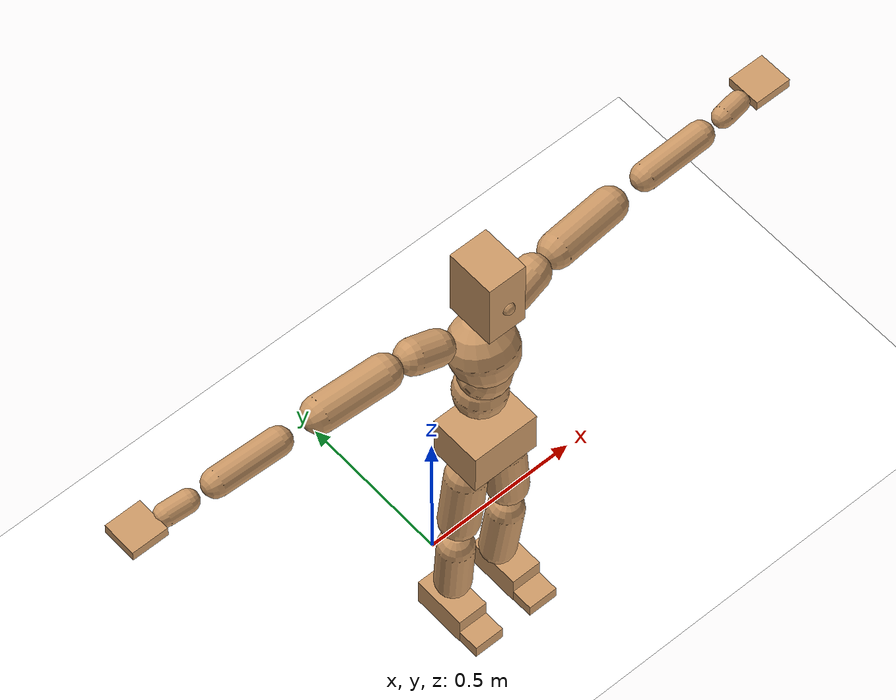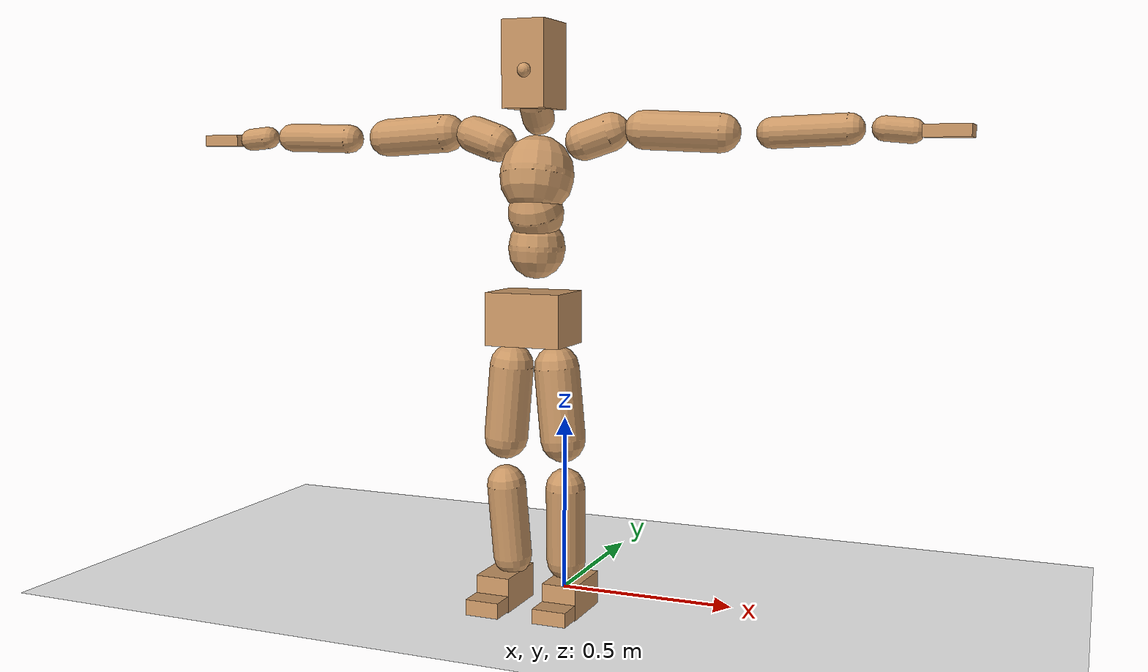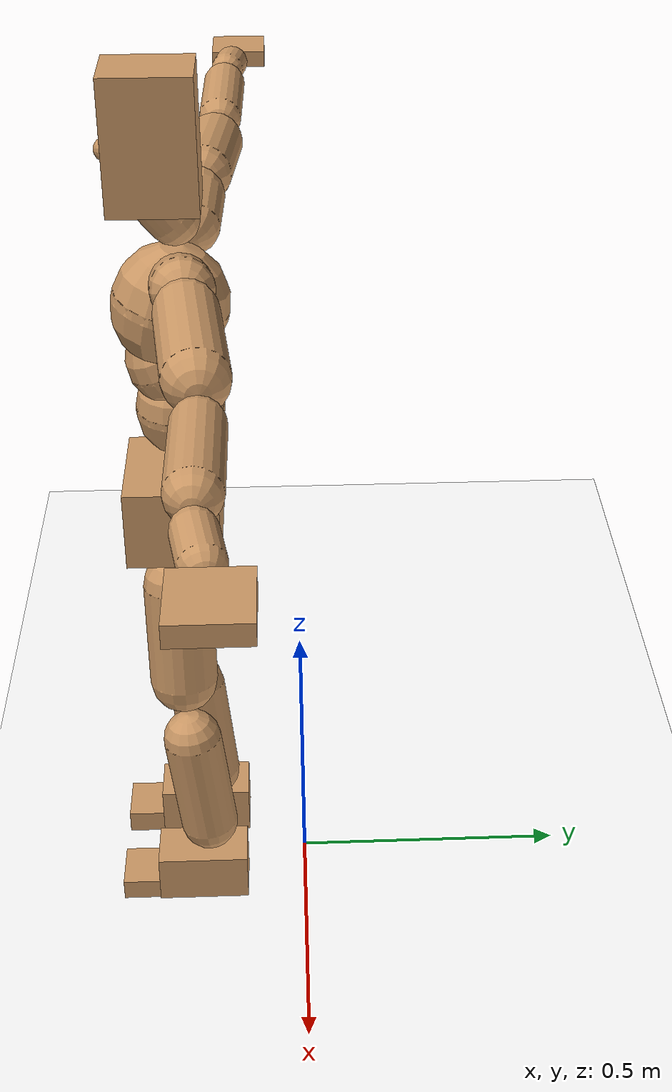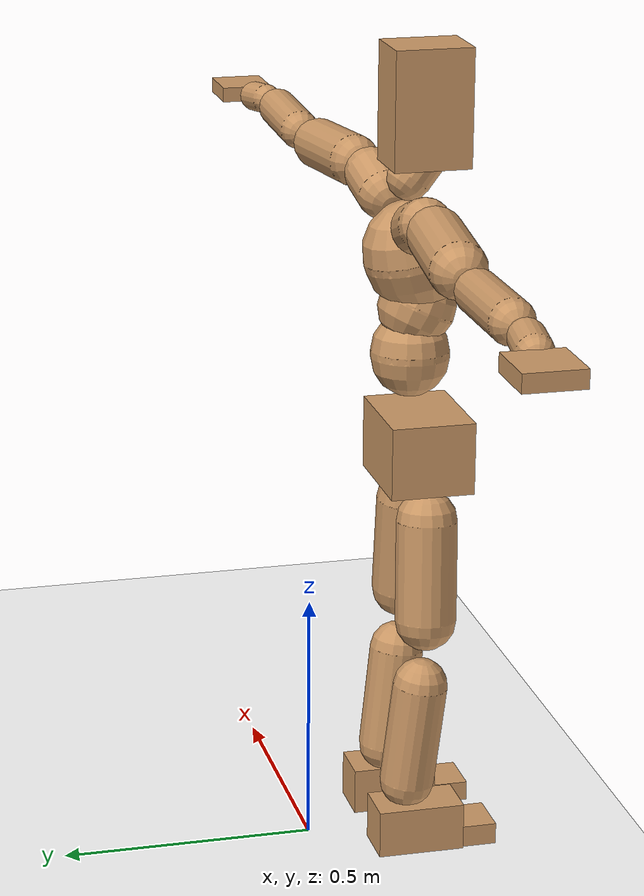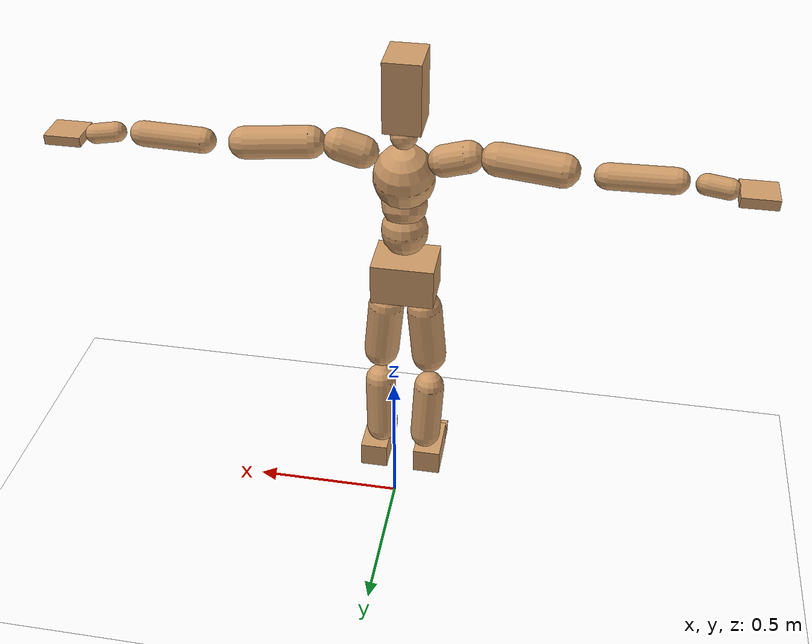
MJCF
<mujoco model="humanoid">
  <option integrator="implicitfast" />

  <visual>
    <global offwidth="1280" offheight="960" />
    <headlight active="1" ambient="0.34 0.34 0.34" diffuse="0.5 0.5 0.5" />
  </visual>

  <default>
    <joint damping="2" stiffness="2" armature="0.01" limited="true" solimplimit="0 .99 .01" />
    <geom condim="1" friction="0.7 0.005 0.0001" solimp=".99 .99 .003" solref="0.015 1" margin="0.001" rgba="0.8 0.6 .4 1" />
    <default class="smplcontact">
      <geom condim="3" friction="1. 0.005 0.0001" solref="0.015 1" solimp="0.98 0.98 0.001" priority="1" />
    </default>
    <default class="stiff_medium">
      <joint stiffness="10" />
    </default>
    <default class="stiff_medium_higher">
      <joint stiffness="50" />
    </default>
    <default class="stiff_high">
      <joint stiffness="100" />
    </default>
  </default>

  <asset>
    <texture type="skybox" builtin="gradient" rgb1="0.99 0.99 0.99" rgb2="0.608 0.828 0.892" width="100" />
    <texture builtin="flat" height="1278" mark="cross" markrgb="1 1 1" name="texgeom" random="0.01" rgb1="0.8 0.6 0.4" rgb2="0.8 0.6 0.4" type="cube" width="127" />
    <texture name="texplane" type="2d" builtin="checker" markrgb="1 1 1" rgb1="0.756 0.772 0.76" rgb2="0.6 0.6 0.6" width="100" height="100" />
    <material name="MatPlane" reflectance="0.5" texture="texplane" texrepeat="1 1" texuniform="true" />
    <material name="geom" texture="texgeom" texuniform="true" />
  </asset>

  <worldbody>
    <light name="tracking_light" pos="0 0 7" dir="0 0 -1" directional="true" cutoff="100" exponent="1" diffuse="1 1 1" specular="0.1 0.1 0.1" mode="trackcom" />
    <camera name="back" pos="0 3 2.4" xyaxes="-1 0 0 0 -1 2" mode="trackcom" />
    <camera name="side" pos="-3 0 2.4" xyaxes="0 -1 0 1 0 2" mode="trackcom" />
    <camera name="front_side" pos="-2.8 -2.8 0.8" xyaxes="0.5 -0.5 0 0.1 0.1 1" mode="trackcom" />
    <geom condim="3" name="floor" pos="0 0 0" rgba="1 1 1 1" size="100 100 .2" type="plane" material="MatPlane" />
    <body name="Pelvis" pos="-0.0018 -0.2233 0.825587" euler="90 0 0">
      <site name="Pelvis" size="0.01" />
      <freejoint name="Pelvis" />
      <geom type="box" pos="-0.0000 -0.0121 -0.0055" size="0.1069 0.0722 0.083" quat="1.0000 0.0000 0.0000 0.0000" density="3165.830099" name="Pelvis" />
      <body name="L_Hip" pos="0.0608125 -0.079975 -0.00595">
        <joint name="L_Hip_x" type="hinge" pos="0 0 0" axis="1 0 0" stiffness="8.018564387755102" range="-160.0 22.92" class="stiff_medium" damping="11.360360262787497" armature="0.007153277434128083"/>
        <joint name="L_Hip_y" type="hinge" pos="0 0 0" axis="0 1 0" stiffness="8.040343265306122" range="-70.0 70.0" class="stiff_medium" damping="8.207855033549667" armature="0.008378856726485999"/>
        <joint name="L_Hip_z" type="hinge" pos="0 0 0" axis="0 0 1" stiffness="8.038478673469386" range="-28.65 90.0" class="stiff_medium" damping="7.581991637464593" armature="0.0071514274685227155"/>
        <geom type="capsule" density="2040.816327" fromto="0.0060375 -0.065625 -0.0007875 0.023975 -0.262675 -0.00315" size="0.0615" name="L_Hip" />
        <body name="L_Knee" pos="0.0300125 -0.3283 -0.0039375">
          <joint name="L_Knee_x" type="hinge" pos="0 0 0" axis="1 0 0" range="-5.16 171.89" damping="6.187481263356624" armature="0.007345812746914755" stiffness="1.6286882448979592"/>
          <joint name="L_Knee_y" type="hinge" pos="0 0 0" axis="0 1 0" range="-4.58 6.88" damping="6.664577128501178" armature="0.008600571968275742" stiffness="1.6138675306122447"/>
          <joint name="L_Knee_z" type="hinge" pos="0 0 0" axis="0 0 1" range="-6.88 4.58" damping="6.195974658750658" armature="0.007336542514311976" stiffness="1.635226244897959"/>
          <geom type="capsule" density="1234.567901" fromto="-0.0023625 -0.06965 -0.0076125 -0.0095375 -0.2786 -0.030625" size="0.0541" name="L_Knee" />
          <body name="L_Ankle" pos="-0.0119 -0.34825 -0.0382375">
            <joint name="L_Ankle_x" type="hinge" pos="0 0 0" axis="1 0 0" range="-45.84 45.84" class="stiff_medium" damping="5.1618081398931706" armature="0.008458478225834629" stiffness="8.750018673469388"/>
            <joint name="L_Ankle_y" type="hinge" pos="0 0 0" axis="0 1 0" range="-74.48 22.92" class="stiff_medium" damping="2.5896377165389355" armature="0.008515827848834853" stiffness="8.750011836734695"/>
            <joint name="L_Ankle_z" type="hinge" pos="0 0 0" axis="0 0 1" range="-4.58 4.58" class="stiff_medium" damping="5.292201995620762" armature="0.00889123871823885" stiffness="8.75"/>
            <geom type="box" pos="0.0203875 -0.0209125 0.021175" size="0.0483 0.0464 0.085" quat="1.0000 0.0000 0.0000 0.0000" density="449.071558" name="L_Ankle" class="smplcontact" />
            <body name="L_Toe" pos="0.0231 -0.048825 0.104388">
              <joint name="L_Toe_x" type="hinge" pos="0 0 0" axis="1 0 0" range="-91.67 22.92" armature="0.009108934582591413" damping="1.7855327227208675" stiffness="1.75"/>
              <joint name="L_Toe_y" type="hinge" pos="0 0 0" axis="0 1 0" range="-4.58 4.58" armature="0.009372172477213336" damping="1.811148908020726" stiffness="1.75"/>
              <joint name="L_Toe_z" type="hinge" pos="0 0 0" axis="0 0 1" range="-4.58 4.58" armature="0.009904425331425014" damping="1.861867037679854" stiffness="1.75"/>
              <geom type="box" pos="-0.002625 0.0048125 0.0217" size="0.0478 0.02 0.0496" quat="1.0000 0.0000 0.0000 0.0000" density="423.206892" name="L_Toe" class="smplcontact" />
            </body>
          </body>
        </body>
      </body>
      <body name="R_Hip" pos="-0.0592375 -0.0791875 -0.0037625">
        <joint name="R_Hip_x" type="hinge" pos="0 0 0" axis="1 0 0" stiffness="8.018564387755102" range="-160.0 22.92" class="stiff_medium" damping="11.360360262787497" armature="0.007153277434128083"/>
        <joint name="R_Hip_y" type="hinge" pos="0 0 0" axis="0 1 0" stiffness="8.040343265306122" range="-70.0 70.0" class="stiff_medium" damping="8.207855033549667" armature="0.008378856726485999"/>
        <joint name="R_Hip_z" type="hinge" pos="0 0 0" axis="0 0 1" stiffness="8.038478673469386" range="-90.0 28.65" class="stiff_medium" damping="7.581991637464593" armature="0.0071514274685227155"/>
        <geom type="capsule" density="2040.816327" fromto="-0.0067375 -0.0669375 -0.001575 -0.026775 -0.267838 -0.0062125" size="0.0606" name="R_Hip" />
        <body name="R_Knee" pos="-0.0335125 -0.334775 -0.0077875">
          <joint name="R_Knee_x" type="hinge" pos="0 0 0" axis="1 0 0" range="-5.16 171.89" damping="6.187481263356624" armature="0.007345812746914755" stiffness="1.6286882448979592"/>
          <joint name="R_Knee_y" type="hinge" pos="0 0 0" axis="0 1 0" range="-6.88 4.58" damping="6.664577128501178" armature="0.008600571968275742" stiffness="1.6138675306122447"/>
          <joint name="R_Knee_z" type="hinge" pos="0 0 0" axis="0 0 1" range="-4.58 6.88" damping="6.195974658750658" armature="0.007336542514311976" stiffness="1.635226244897959"/>
          <geom type="capsule" density="1234.567901" fromto="0.0028 -0.0697375 -0.0074375 0.011025 -0.278863 -0.029575" size="0.0541" name="R_Knee" />
          <body name="R_Ankle" pos="0.013825 -0.3486 -0.0370125">
            <joint name="R_Ankle_x" type="hinge" pos="0 0 0" axis="1 0 0" range="-45.84 45.84" class="stiff_medium" damping="5.1618081398931706" armature="0.008458478225834629" stiffness="8.750018673469388"/>
            <joint name="R_Ankle_y" type="hinge" pos="0 0 0" axis="0 1 0" range="-22.92 74.48" class="stiff_medium" damping="2.5896377165389355" armature="0.008515827848834853" stiffness="8.750011836734695"/>
            <joint name="R_Ankle_z" type="hinge" pos="0 0 0" axis="0 0 1" range="-4.58 4.58" class="stiff_medium" damping="5.292201995620762" armature="0.00889123871823885" stiffness="8.75"/>
            <geom type="box" pos="-0.01855 -0.015225 0.0224" size="0.0483 0.0478 0.0865" quat="1.0000 0.0000 0.0000 0.0000" density="434.700981" name="R_Ankle" class="smplcontact" />
            <body name="R_Toe" pos="-0.022225 -0.0420875 0.107888">
              <joint name="R_Toe_x" type="hinge" pos="0 0 0" axis="1 0 0" range="-91.67 22.92" armature="0.009108934582591413" damping="1.7855327227208675" stiffness="1.75"/>
              <joint name="R_Toe_y" type="hinge" pos="0 0 0" axis="0 1 0" range="-4.58 4.58" armature="0.009372172477213336" damping="1.811148908020726" stiffness="1.75"/>
              <joint name="R_Toe_z" type="hinge" pos="0 0 0" axis="0 0 1" range="-4.58 4.58" armature="0.009904425331425014" damping="1.861867037679854" stiffness="1.75"/>
              <geom type="box" pos="0.003675 0.0039375 0.0198625" size="0.0479 0.0216 0.0493" quat="1.0000 0.0000 0.0000 0.0000" density="407.384095" name="R_Toe" class="smplcontact" />
            </body>
          </body>
        </body>
      </body>
      <body name="Torso" pos="-0.0025 0.109 -0.0267">
        <joint name="Torso_x" type="hinge" pos="0 0 0" axis="1 0 0" range="-25.78 57.3" class="stiff_medium" damping="16.94478917737132" armature="0.01157607956441882" stiffness="11.023723673469387"/>
        <joint name="Torso_y" type="hinge" pos="0 0 0" axis="0 1 0" range="-57.3 57.3" class="stiff_high" damping="29.11508756713538" armature="0.01937626790595332" stiffness="109.37198124999998"/>
        <joint name="Torso_z" type="hinge" pos="0 0 0" axis="0 0 1" range="-34.38 34.38" class="stiff_high" damping="24.64077151532871" armature="0.014228244849331766" stiffness="106.68350652173912"/>
        <geom type="capsule" density="2040.816327" fromto="0.0025 0.0608 0.0005 0.003 0.0743 0.0006" size="0.0769" name="Torso" />
        <body name="Spine" pos="0.0055 0.1352 0.0011">
          <joint name="Spine_x" type="hinge" pos="0 0 0" axis="1 0 0" stiffness="11.23382224489796" range="-25.78 57.3" class="stiff_medium" damping="17.41106230963078" armature="0.011993349058515351"/>
          <joint name="Spine_y" type="hinge" pos="0 0 0" axis="0 1 0" stiffness="11.67224088888889" range="-57.3 57.3" class="stiff_high" damping="12.051053820080998" armature="0.01944087626855341"/>
          <joint name="Spine_z" type="hinge" pos="0 0 0" axis="0 0 1" stiffness="22.9563125" range="-34.38 34.38" class="stiff_high" damping="16.317554444807215" armature="0.01610925723100537"/>
          <geom type="capsule" density="2040.816327" fromto="0.0007 0.0238 0.0114 0.0008 0.0291 0.014" size="0.0755" name="Spine" />
          <body name="Chest" pos="0.0015 0.0529 0.0254">
            <joint name="Chest_x" type="hinge" pos="0 0 0" axis="1 0 0" stiffness="11.776115531914895" range="-25.78 57.3" class="stiff_medium" damping="18.021102303759765" armature="0.012256829035287789"/>
            <joint name="Chest_y" type="hinge" pos="0 0 0" axis="0 1 0" stiffness="13.448267333333334" range="-57.3 57.3" class="stiff_high" damping="12.937740431789006" armature="0.01944780358729065"/>
            <joint name="Chest_z" type="hinge" pos="0 0 0" axis="0 0 1" stiffness="23.267014782608697" range="-34.38 34.38" class="stiff_high" damping="16.847528832624963" armature="0.016943348915127984"/>
            <geom type="capsule" density="2040.816327" fromto="-0.0009 0.0682 -0.0173 -0.001 0.0833 -0.0212" size="0.1002" name="Chest" />
            <body name="Neck" pos="-0.0028 0.2139 -0.0429">
              <joint name="Neck_x" type="hinge" pos="0 0 0" axis="1 0 0" range="-28.65 57.3" class="stiff_medium_higher" damping="10.000000000000004" armature="0.01000000000000001" stiffness="50.0"/>
              <joint name="Neck_y" type="hinge" pos="0 0 0" axis="0 1 0" range="-40.11 40.11" class="stiff_medium_higher" damping="10.0" armature="0.01" stiffness="50.0"/>
              <joint name="Neck_z" type="hinge" pos="0 0 0" axis="0 0 1" range="-40.11 40.11" class="stiff_medium_higher" damping="10.0" armature="0.010000000000000002" stiffness="50.0"/>
              <geom type="capsule" density="1000" fromto="0.001 0.013 0.0103 0.0041 0.052 0.0411" size="0.0436" name="Neck" />
              <body name="Head" pos="0.0052 0.065 0.0513">
                <joint name="Head_x" type="hinge" pos="0 0 0" axis="1 0 0" range="-28.65 57.3" class="stiff_medium_higher" damping="2.000000000000003" armature="0.010000000000000031" stiffness="50.0"/>
                <joint name="Head_y" type="hinge" pos="0 0 0" axis="0 1 0" range="-40.11 40.11" class="stiff_medium_higher" damping="1.9999999999999998" armature="0.009999999999999998" stiffness="50.0"/>
                <joint name="Head_z" type="hinge" pos="0 0 0" axis="0 0 1" range="-40.11 40.11" class="stiff_medium_higher" damping="2.0" armature="0.01" stiffness="50.0"/>
                <geom type="box" pos="-0.0042 0.0876 -0.0116" size="0.0606 0.1154 0.076" quat="1.0000 0.0000 0.0000 0.0000" density="1018.069894" name="Head" />
                <geom type="capsule" name="nose" size="0.02 0.01" pos="0 0.07 0.05" quat="1 0 0 0" mass="0" contype="0" conaffinity="0" />
              </body>
            </body>
            <body name="L_Thorax" pos="0.10244 0.15821 -0.04433">
              <joint name="L_Thorax_x" type="hinge" pos="0 0 0" axis="1 0 0" range="-10.89 4.58" class="stiff_medium_higher" damping="31.58973579795785" armature="0.016223873504270302" stiffness="76.88603214285715"/>
              <joint name="L_Thorax_y" type="hinge" pos="0 0 0" axis="0 1 0" range="-28.65 17.19" class="stiff_medium_higher" damping="34.899895599714064" armature="0.01967496307175569" stiffness="77.38278265306123"/>
              <joint name="L_Thorax_z" type="hinge" pos="0 0 0" axis="0 0 1" range="-31.51 40.11" class="stiff_medium_higher" damping="34.901462278801546" armature="0.019678125977203684" stiffness="77.37729132653061"/>
              <geom type="capsule" density="1000" fromto="0.02366 0.00793 -0.00234 0.09464 0.03172 -0.00923" size="0.0521" name="L_Thorax" />
              <body name="L_Shoulder" pos="0.1183 0.03965 -0.01157">
                <joint name="L_Shoulder_x" type="hinge" pos="0 0 0" axis="1 0 0" range="-97.4 97.4" class="stiff_medium" damping="9.029989056679007" armature="0.014800063709014051" stiffness="15.304120000000001"/>
                <joint name="L_Shoulder_y" type="hinge" pos="0 0 0" axis="0 1 0" range="-108.86 80.21" class="stiff_medium" damping="10.416659800941959" armature="0.019521721968520908" stiffness="15.439610408163267"/>
                <joint name="L_Shoulder_z" type="hinge" pos="0 0 0" axis="0 0 1" range="-97.4 85.94" class="stiff_medium" damping="10.414978319288075" armature="0.019525527681653103" stiffness="15.431617857142857"/>
                <geom type="capsule" density="1000" fromto="0.06747 -0.00338 -0.00715 0.27001 -0.01326 -0.0286" size="0.0517" name="L_Shoulder" />
                <body name="L_Elbow" pos="0.33748 -0.01664 -0.03575">
                  <joint name="L_Elbow_x" type="hinge" pos="0 0 0" axis="1 0 0" range="-17.19 4.58" damping="6.893935965131418" armature="0.012655354053031337" stiffness="3.0043475918367353"/>
                  <joint name="L_Elbow_y" type="hinge" pos="0 0 0" axis="0 1 0" range="-180.0 17.19" damping="8.400044856786582" armature="0.01878090142426553" stiffness="3.005638632653061"/>
                  <joint name="L_Elbow_z" type="hinge" pos="0 0 0" axis="0 0 1" range="-100.84 4.58" damping="8.401427491655662" armature="0.018800821954664825" stiffness="3.003442469387755"/>
                  <geom type="capsule" density="1000" fromto="0.06474 0.00234 -0.00026 0.25922 0.00936 -0.00117" size="0.0405" name="L_Elbow" />
                  <body name="L_Wrist" pos="0.32396 0.0117 -0.00156">
                    <joint name="L_Wrist_x" type="hinge" pos="0 0 0" axis="1 0 0" range="-180.0 22.92" armature="0.01229032794172809" damping="2.595783394027905" stiffness="2.7412171020408165"/>
                    <joint name="L_Wrist_y" type="hinge" pos="0 0 0" axis="0 1 0" range="-17.19 17.19" armature="0.016530608092611563" damping="3.0218064127612343" stiffness="2.7619413469387752"/>
                    <joint name="L_Wrist_z" type="hinge" pos="0 0 0" axis="0 0 1" range="-22.92 22.92" armature="0.01676100149056628" damping="3.0381836187288065" stiffness="2.7535823877551024"/>
                    <geom type="capsule" density="1000" fromto="0.02184 -0.00208 -0.0039 0.08736 -0.00845 -0.0156" size="0.0318" name="L_Wrist" class="smplcontact" />
                    <body name="L_Hand" pos="0.1092 -0.01066 -0.01937">
                      <joint name="L_Hand_x" type="hinge" pos="0 0 0" axis="1 0 0" range="-17.19 17.19" armature="0.01030060650759192" damping="2.3143714878877586" stiffness="2.5999999999999996"/>
                      <joint name="L_Hand_y" type="hinge" pos="0 0 0" axis="0 1 0" range="-51.57 51.57" armature="0.013635420978089298" damping="2.662784052191697" stiffness="2.5999999999999996"/>
                      <joint name="L_Hand_z" type="hinge" pos="0 0 0" axis="0 0 1" range="-91.67 91.67" armature="0.014524361339041782" damping="2.748211763365721" stiffness="2.5999999999999996"/>
                      <geom type="box" pos="0.06409 0.0013 -0.00754" size="0.0585 0.0158 0.0538" quat="1.0000 0.0000 0.0000 0.0000" density="400.552564" name="L_Hand" class="smplcontact" />
                    </body>
                  </body>
                </body>
              </body>
            </body>
            <body name="R_Thorax" pos="-0.10634 0.15444 -0.05018">
              <joint name="R_Thorax_x" type="hinge" pos="0 0 0" axis="1 0 0" range="-10.89 4.58" class="stiff_medium_higher" damping="31.58973579795785" armature="0.016223873504270302" stiffness="76.88603214285715"/>
              <joint name="R_Thorax_y" type="hinge" pos="0 0 0" axis="0 1 0" range="-17.19 28.65" class="stiff_medium_higher" damping="34.899895599714064" armature="0.01967496307175569" stiffness="77.38278265306123"/>
              <joint name="R_Thorax_z" type="hinge" pos="0 0 0" axis="0 0 1" range="-40.11 31.51" class="stiff_medium_higher" damping="34.901462278801546" armature="0.019678125977203684" stiffness="77.37729132653061"/>
              <geom type="capsule" density="1000" fromto="-0.02496 0.00845 -0.00234 -0.09984 0.0338 -0.00949" size="0.0511" name="R_Thorax" />
              <body name="R_Shoulder" pos="-0.1248 0.04238 -0.01183">
                <joint name="R_Shoulder_x" type="hinge" pos="0 0 0" axis="1 0 0" range="-97.4 97.4" class="stiff_medium" damping="9.029989056679007" armature="0.014800063709014051" stiffness="15.304120000000001"/>
                <joint name="R_Shoulder_y" type="hinge" pos="0 0 0" axis="0 1 0" range="-80.21 108.86" class="stiff_medium" damping="10.416659800941959" armature="0.019521721968520908" stiffness="15.439610408163267"/>
                <joint name="R_Shoulder_z" type="hinge" pos="0 0 0" axis="0 0 1" range="-85.94 97.4" class="stiff_medium" damping="10.414978319288075" armature="0.019525527681653103" stiffness="15.431617857142857"/>
                <geom type="capsule" density="1000" fromto="-0.06591 -0.00351 -0.00559 -0.2639 -0.01391 -0.02223" size="0.0531" name="R_Shoulder" />
                <body name="R_Elbow" pos="-0.32981 -0.01729 -0.02782">
                  <joint name="R_Elbow_x" type="hinge" pos="0 0 0" axis="1 0 0" range="-17.19 4.58" damping="6.893935965131418" armature="0.012655354053031337" stiffness="3.0043475918367353"/>
                  <joint name="R_Elbow_y" type="hinge" pos="0 0 0" axis="0 1 0" range="-17.19 180.0" damping="8.400044856786582" armature="0.01878090142426553" stiffness="3.005638632653061"/>
                  <joint name="R_Elbow_z" type="hinge" pos="0 0 0" axis="0 0 1" range="-4.58 100.84" damping="8.401427491655662" armature="0.018800821954664825" stiffness="3.003442469387755"/>
                  <geom type="capsule" density="1000" fromto="-0.06643 0.00208 -0.00143 -0.26546 0.00806 -0.00572" size="0.0408" name="R_Elbow" />
                  <body name="R_Wrist" pos="-0.33189 0.01014 -0.00728">
                    <joint name="R_Wrist_x" type="hinge" pos="0 0 0" axis="1 0 0" range="-180.0 22.92" armature="0.01229032794172809" damping="2.595783394027905" stiffness="2.7412171020408165"/>
                    <joint name="R_Wrist_y" type="hinge" pos="0 0 0" axis="0 1 0" range="-17.19 17.19" armature="0.016530608092611563" damping="3.0218064127612343" stiffness="2.7619413469387752"/>
                    <joint name="R_Wrist_z" type="hinge" pos="0 0 0" axis="0 0 1" range="-22.92 22.92" armature="0.01676100149056628" damping="3.0381836187288065" stiffness="2.7535823877551024"/>
                    <geom type="capsule" density="1000" fromto="-0.02197 -0.00156 -0.00273 -0.08801 -0.00637 -0.01079" size="0.0326" name="R_Wrist" class="smplcontact" />
                    <body name="R_Hand" pos="-0.10998 -0.00793 -0.01339">
                      <joint name="R_Hand_x" type="hinge" pos="0 0 0" axis="1 0 0" range="-17.19 17.19" armature="0.01030060650759192" damping="2.3143714878877586" stiffness="2.5999999999999996"/>
                      <joint name="R_Hand_y" type="hinge" pos="0 0 0" axis="0 1 0" range="-51.57 51.57" armature="0.013635420978089298" damping="2.662784052191697" stiffness="2.5999999999999996"/>
                      <joint name="R_Hand_z" type="hinge" pos="0 0 0" axis="0 0 1" range="-91.67 91.67" armature="0.014524361339041782" damping="2.748211763365721" stiffness="2.5999999999999996"/>
                      <geom type="box" pos="-0.06006 -0.00117 -0.01027" size="0.0569 0.0164 0.0546" quat="1.0000 0.0000 0.0000 0.0000" density="403.679611" name="R_Hand" class="smplcontact" />
                    </body>
                  </body>
                </body>
              </body>
            </body>
          </body>
        </body>
      </body>
    </body>
  </worldbody>
  <actuator>
    <general name="L_Hip_x" joint="L_Hip_x" biastype="affine" gainprm="230.3974619502181" biasprm="-172.65954561631258 -144.33415897959185 -1.5147147017049996" ctrllimited="true" ctrlrange="-1 1" forcerange="-288.6683179591837 288.6683179591837" />
    <general name="L_Hip_y" joint="L_Hip_y" biastype="affine" gainprm="176.8163833423812" biasprm="0.0 -144.7261787755102 -1.6415710067099334" ctrllimited="true" ctrlrange="-1 1" forcerange="-289.4523575510204 289.4523575510204" />
    <general name="L_Hip_z" joint="L_Hip_z" biastype="affine" gainprm="149.81713355526176" biasprm="77.4654963642251 -144.69261612244895 -1.5163983274929185" ctrllimited="true" ctrlrange="-1 1" forcerange="-289.3852322448979 289.3852322448979" />
    <general name="L_Knee_x" joint="L_Knee_x" biastype="affine" gainprm="226.4768283011216" biasprm="213.27580673621011 -146.58194204081633 -1.546870315839156" ctrllimited="true" ctrlrange="-1 1" forcerange="-293.16388408163266 293.16388408163266" />
    <general name="L_Knee_y" joint="L_Knee_y" biastype="affine" gainprm="14.525877693080384" biasprm="2.915315767372154 -145.24807775510203 -1.6661442821252945" ctrllimited="true" ctrlrange="-1 1" forcerange="-290.49615551020406 290.49615551020406" />
    <general name="L_Knee_z" joint="L_Knee_z" biastype="affine" gainprm="14.718120281465588" biasprm="-2.953898485808975 -147.17036204081631 -1.5489936646876645" ctrllimited="true" ctrlrange="-1 1" forcerange="-294.34072408163263 294.34072408163263" />
    <general name="L_Ankle_x" joint="L_Ankle_x" biastype="affine" gainprm="63.0047751266266" biasprm="0.0 -78.75016806122449 -1.7206027132977235" ctrllimited="true" ctrlrange="-1 1" forcerange="-157.50033612244897 157.50033612244897" />
    <general name="L_Ankle_y" joint="L_Ankle_y" biastype="affine" gainprm="66.93564902394152" biasprm="-35.43328607468609 -78.75010653061226 -1.7264251443592904" ctrllimited="true" ctrlrange="-1 1" forcerange="-157.5002130612245 157.5002130612245" />
    <general name="L_Ankle_z" joint="L_Ankle_z" biastype="affine" gainprm="6.294966279630548" biasprm="0.0 -78.75 -1.7640673318735873" ctrllimited="true" ctrlrange="-1 1" forcerange="-157.5 157.5" />
    <general name="L_Toe_x" joint="L_Toe_x" biastype="affine" gainprm="62.999142880599514" biasprm="-37.797286613502195 -63.0 -0.714213089088347" ctrllimited="true" ctrlrange="-1 1" forcerange="-126.0 126.0" />
    <general name="L_Toe_y" joint="L_Toe_y" biastype="affine" gainprm="5.035973023704439" biasprm="0.0 -63.0 -0.7244595632082904" ctrllimited="true" ctrlrange="-1 1" forcerange="-126.0 126.0" />
    <general name="L_Toe_z" joint="L_Toe_z" biastype="affine" gainprm="5.035973023704439" biasprm="0.0 -63.0 -0.7447468150719416" ctrllimited="true" ctrlrange="-1 1" forcerange="-126.0 126.0" />
    <general name="R_Hip_x" joint="R_Hip_x" biastype="affine" gainprm="230.3974619502181" biasprm="-172.65954561631258 -144.33415897959185 -1.5147147017049996" ctrllimited="true" ctrlrange="-1 1" forcerange="-288.6683179591837 288.6683179591837" />
    <general name="R_Hip_y" joint="R_Hip_y" biastype="affine" gainprm="176.8163833423812" biasprm="0.0 -144.7261787755102 -1.6415710067099334" ctrllimited="true" ctrlrange="-1 1" forcerange="-289.4523575510204 289.4523575510204" />
    <general name="R_Hip_z" joint="R_Hip_z" biastype="affine" gainprm="149.81713355526176" biasprm="-77.4654963642251 -144.69261612244895 -1.5163983274929185" ctrllimited="true" ctrlrange="-1 1" forcerange="-289.3852322448979 289.3852322448979" />
    <general name="R_Knee_x" joint="R_Knee_x" biastype="affine" gainprm="226.4768283011216" biasprm="213.27580673621011 -146.58194204081633 -1.546870315839156" ctrllimited="true" ctrlrange="-1 1" forcerange="-293.16388408163266 293.16388408163266" />
    <general name="R_Knee_y" joint="R_Knee_y" biastype="affine" gainprm="14.525877693080384" biasprm="-2.915315767372154 -145.24807775510203 -1.6661442821252945" ctrllimited="true" ctrlrange="-1 1" forcerange="-290.49615551020406 290.49615551020406" />
    <general name="R_Knee_z" joint="R_Knee_z" biastype="affine" gainprm="14.718120281465588" biasprm="2.953898485808975 -147.17036204081631 -1.5489936646876645" ctrllimited="true" ctrlrange="-1 1" forcerange="-294.34072408163263 294.34072408163263" />
    <general name="R_Ankle_x" joint="R_Ankle_x" biastype="affine" gainprm="63.0047751266266" biasprm="0.0 -78.75016806122449 -1.7206027132977235" ctrllimited="true" ctrlrange="-1 1" forcerange="-157.50033612244897 157.50033612244897" />
    <general name="R_Ankle_y" joint="R_Ankle_y" biastype="affine" gainprm="66.93564902394152" biasprm="35.43328607468609 -78.75010653061226 -1.7264251443592904" ctrllimited="true" ctrlrange="-1 1" forcerange="-157.5002130612245 157.5002130612245" />
    <general name="R_Ankle_z" joint="R_Ankle_z" biastype="affine" gainprm="6.294966279630548" biasprm="0.0 -78.75 -1.7640673318735873" ctrllimited="true" ctrlrange="-1 1" forcerange="-157.5 157.5" />
    <general name="R_Toe_x" joint="R_Toe_x" biastype="affine" gainprm="62.999142880599514" biasprm="-37.797286613502195 -63.0 -0.714213089088347" ctrllimited="true" ctrlrange="-1 1" forcerange="-126.0 126.0" />
    <general name="R_Toe_y" joint="R_Toe_y" biastype="affine" gainprm="5.035973023704439" biasprm="0.0 -63.0 -0.7244595632082904" ctrllimited="true" ctrlrange="-1 1" forcerange="-126.0 126.0" />
    <general name="R_Toe_z" joint="R_Toe_z" biastype="affine" gainprm="5.035973023704439" biasprm="0.0 -63.0 -0.7447468150719416" ctrllimited="true" ctrlrange="-1 1" forcerange="-126.0 126.0" />
    <general name="Torso_x" joint="Torso_x" biastype="affine" gainprm="191.81537709933156" biasprm="72.77347961207185 -264.5693681632653 -4.518610447299018" ctrllimited="true" ctrlrange="-1 1" forcerange="-396.85405224489796 396.85405224489796" />
    <general name="Torso_y" joint="Torso_y" biastype="affine" gainprm="262.51209058192023" biasprm="0.0 -262.492755 -5.823017513427076" ctrllimited="true" ctrlrange="-1 1" forcerange="-393.7391324999999 393.7391324999999" />
    <general name="Torso_z" joint="Torso_z" biastype="affine" gainprm="153.63556556747483" biasprm="0.0 -256.0404156521739 -4.9281543030657415" ctrllimited="true" ctrlrange="-1 1" forcerange="-384.0606234782608 384.0606234782608" />
    <general name="Spine_x" joint="Spine_x" biastype="affine" gainprm="195.47114151254812" biasprm="74.16045234082229 -269.61173387755105 -4.6429499492348745" ctrllimited="true" ctrlrange="-1 1" forcerange="-404.41760081632657 404.41760081632657" />
    <general name="Spine_y" joint="Spine_y" biastype="affine" gainprm="280.1544163778229" biasprm="0.0 -280.13378133333333 -6.025526910040499" ctrllimited="true" ctrlrange="-1 1" forcerange="-420.200672 420.200672" />
    <general name="Spine_z" joint="Spine_z" biastype="affine" gainprm="165.29762515644848" biasprm="0.0 -275.47575 -5.439184814935738" ctrllimited="true" ctrlrange="-1 1" forcerange="-413.213625 413.213625" />
    <general name="Chest_x" joint="Chest_x" biastype="affine" gainprm="204.90717188021173" biasprm="77.74041956745634 -282.62677276595747 -4.805627281002604" ctrllimited="true" ctrlrange="-1 1" forcerange="-423.94015914893623 423.94015914893623" />
    <general name="Chest_y" joint="Chest_y" biastype="affine" gainprm="322.78219083444463" biasprm="0.0 -322.758416 -6.468870215894503" ctrllimited="true" ctrlrange="-1 1" forcerange="-484.1376240000001 484.1376240000001" />
    <general name="Chest_z" joint="Chest_z" biastype="affine" gainprm="167.53484637592376" biasprm="0.0 -279.20417739130437 -5.615842944208321" ctrllimited="true" ctrlrange="-1 1" forcerange="-418.8062660869566 418.8062660869566" />
    <general name="Neck_x" joint="Neck_x" biastype="affine" gainprm="27.00198885760427" biasprm="9.000662952534757 -36.0 -0.8000000000000004" ctrllimited="true" ctrlrange="-1 1" forcerange="-72.0 72.0" />
    <general name="Neck_y" joint="Neck_y" biastype="affine" gainprm="25.20185626709732" biasprm="0.0 -36.0 -0.8" ctrllimited="true" ctrlrange="-1 1" forcerange="-72.0 72.0" />
    <general name="Neck_z" joint="Neck_z" biastype="affine" gainprm="25.20185626709732" biasprm="0.0 -36.0 -0.8" ctrllimited="true" ctrlrange="-1 1" forcerange="-72.0 72.0" />
    <general name="Head_x" joint="Head_x" biastype="affine" gainprm="18.001325905069514" biasprm="6.000441968356505 -24.0 -0.8000000000000013" ctrllimited="true" ctrlrange="-1 1" forcerange="-48.0 48.0" />
    <general name="Head_y" joint="Head_y" biastype="affine" gainprm="16.801237511398213" biasprm="0.0 -24.0 -0.7999999999999999" ctrllimited="true" ctrlrange="-1 1" forcerange="-48.0 48.0" />
    <general name="Head_z" joint="Head_z" biastype="affine" gainprm="16.801237511398213" biasprm="0.0 -24.0 -0.8" ctrllimited="true" ctrlrange="-1 1" forcerange="-48.0 48.0" />
    <general name="L_Thorax_x" joint="L_Thorax_x" biastype="affine" gainprm="24.911299101430362" biasprm="-10.160975910150333 -184.52647714285715 -2.527178863836628" ctrllimited="true" ctrlrange="-1 1" forcerange="-369.0529542857143 369.0529542857143" />
    <general name="L_Thorax_y" joint="L_Thorax_y" biastype="affine" gainprm="74.29294346554212" biasprm="-18.57323586638553 -185.71867836734694 -2.791991647977125" ctrllimited="true" ctrlrange="-1 1" forcerange="-371.4373567346939 371.4373567346939" />
    <general name="L_Thorax_z" joint="L_Thorax_z" biastype="affine" gainprm="116.06638363736599" biasprm="13.937041319203399 -185.70549918367348 -2.7921169823041243" ctrllimited="true" ctrlrange="-1 1" forcerange="-371.41099836734696 371.41099836734696" />
    <general name="L_Shoulder_x" joint="L_Shoulder_x" biastype="affine" gainprm="124.8779970044095" biasprm="0.0 -73.459776 -2.4079970817810685" ctrllimited="true" ctrlrange="-1 1" forcerange="-146.919552 146.919552" />
    <general name="L_Shoulder_y" joint="L_Shoulder_y" biastype="affine" gainprm="122.27778721627745" biasprm="-18.528897253643354 -74.11012995918368 -2.7777759469178562" ctrllimited="true" ctrlrange="-1 1" forcerange="-148.22025991836736 148.22025991836736" />
    <general name="L_Shoulder_z" joint="L_Shoulder_z" biastype="affine" gainprm="118.51062714799397" biasprm="-7.40772219437119 -74.0717657142857 -2.7773275518101537" ctrllimited="true" ctrlrange="-1 1" forcerange="-148.1435314285714 148.1435314285714" />
    <general name="L_Elbow_x" joint="L_Elbow_x" biastype="affine" gainprm="20.54747587592092" biasprm="-11.901868203737386 -108.15651330612246 -1.103029754421027" ctrllimited="true" ctrlrange="-1 1" forcerange="-216.31302661224493 216.31302661224493" />
    <general name="L_Elbow_y" joint="L_Elbow_y" biastype="affine" gainprm="186.19650463217005" biasprm="-153.73321628461693 -108.20299077551019 -1.3440071770858533" ctrllimited="true" ctrlrange="-1 1" forcerange="-216.40598155102037 216.40598155102037" />
    <general name="L_Elbow_z" joint="L_Elbow_z" biastype="affine" gainprm="99.4700192692226" biasprm="-90.82701626688834 -108.12392889795919 -1.344228398664906" ctrllimited="true" ctrlrange="-1 1" forcerange="-216.24785779591838 216.24785779591838" />
    <general name="L_Wrist_x" joint="L_Wrist_x" biastype="affine" gainprm="29.125065357690858" biasprm="-22.545659700305933 -16.447302612244897 -1.038313357611162" ctrllimited="true" ctrlrange="-1 1" forcerange="-32.894605224489794 32.894605224489794" />
    <general name="L_Wrist_y" joint="L_Wrist_y" biastype="affine" gainprm="4.971860631693158" biasprm="0.0 -16.571648081632652 -1.2087225651044937" ctrllimited="true" ctrlrange="-1 1" forcerange="-33.143296163265305 33.143296163265305" />
    <general name="L_Wrist_z" joint="L_Wrist_z" biastype="affine" gainprm="6.609084529125214" biasprm="0.0 -16.521494326530615 -1.2152734474915228" ctrllimited="true" ctrlrange="-1 1" forcerange="-33.04298865306123 33.04298865306123" />
    <general name="L_Hand_x" joint="L_Hand_x" biastype="affine" gainprm="4.680344735318074" biasprm="0.0 -15.599999999999998 -0.9257485951551034" ctrllimited="true" ctrlrange="-1 1" forcerange="-31.199999999999996 31.199999999999996" />
    <general name="L_Hand_y" joint="L_Hand_y" biastype="affine" gainprm="14.041034205954219" biasprm="0.0 -15.599999999999998 -1.065113620876679" ctrllimited="true" ctrlrange="-1 1" forcerange="-31.199999999999996 31.199999999999996" />
    <general name="L_Hand_z" joint="L_Hand_z" biastype="affine" gainprm="24.959115874729946" biasprm="0.0 -15.599999999999998 -1.0992847053462884" ctrllimited="true" ctrlrange="-1 1" forcerange="-31.199999999999996 31.199999999999996" />
    <general name="R_Thorax_x" joint="R_Thorax_x" biastype="affine" gainprm="24.911299101430362" biasprm="-10.160975910150333 -184.52647714285715 -2.527178863836628" ctrllimited="true" ctrlrange="-1 1" forcerange="-369.0529542857143 369.0529542857143" />
    <general name="R_Thorax_y" joint="R_Thorax_y" biastype="affine" gainprm="74.29294346554212" biasprm="18.57323586638552 -185.71867836734694 -2.791991647977125" ctrllimited="true" ctrlrange="-1 1" forcerange="-371.4373567346939 371.4373567346939" />
    <general name="R_Thorax_z" joint="R_Thorax_z" biastype="affine" gainprm="116.06638363736599" biasprm="-13.937041319203399 -185.70549918367348 -2.7921169823041243" ctrllimited="true" ctrlrange="-1 1" forcerange="-371.41099836734696 371.41099836734696" />
    <general name="R_Shoulder_x" joint="R_Shoulder_x" biastype="affine" gainprm="124.8779970044095" biasprm="0.0 -73.459776 -2.4079970817810685" ctrllimited="true" ctrlrange="-1 1" forcerange="-146.919552 146.919552" />
    <general name="R_Shoulder_y" joint="R_Shoulder_y" biastype="affine" gainprm="122.27778721627745" biasprm="18.528897253643354 -74.11012995918368 -2.7777759469178562" ctrllimited="true" ctrlrange="-1 1" forcerange="-148.22025991836736 148.22025991836736" />
    <general name="R_Shoulder_z" joint="R_Shoulder_z" biastype="affine" gainprm="118.51062714799397" biasprm="7.407722194371173 -74.0717657142857 -2.7773275518101537" ctrllimited="true" ctrlrange="-1 1" forcerange="-148.1435314285714 148.1435314285714" />
    <general name="R_Elbow_x" joint="R_Elbow_x" biastype="affine" gainprm="20.54747587592092" biasprm="-11.901868203737386 -108.15651330612246 -1.103029754421027" ctrllimited="true" ctrlrange="-1 1" forcerange="-216.31302661224493 216.31302661224493" />
    <general name="R_Elbow_y" joint="R_Elbow_y" biastype="affine" gainprm="186.19650463217005" biasprm="153.73321628461693 -108.20299077551019 -1.3440071770858533" ctrllimited="true" ctrlrange="-1 1" forcerange="-216.40598155102037 216.40598155102037" />
    <general name="R_Elbow_z" joint="R_Elbow_z" biastype="affine" gainprm="99.4700192692226" biasprm="90.82701626688832 -108.12392889795919 -1.344228398664906" ctrllimited="true" ctrlrange="-1 1" forcerange="-216.24785779591838 216.24785779591838" />
    <general name="R_Wrist_x" joint="R_Wrist_x" biastype="affine" gainprm="29.125065357690858" biasprm="-22.545659700305933 -16.447302612244897 -1.038313357611162" ctrllimited="true" ctrlrange="-1 1" forcerange="-32.894605224489794 32.894605224489794" />
    <general name="R_Wrist_y" joint="R_Wrist_y" biastype="affine" gainprm="4.971860631693158" biasprm="0.0 -16.571648081632652 -1.2087225651044937" ctrllimited="true" ctrlrange="-1 1" forcerange="-33.143296163265305 33.143296163265305" />
    <general name="R_Wrist_z" joint="R_Wrist_z" biastype="affine" gainprm="6.609084529125214" biasprm="0.0 -16.521494326530615 -1.2152734474915228" ctrllimited="true" ctrlrange="-1 1" forcerange="-33.04298865306123 33.04298865306123" />
    <general name="R_Hand_x" joint="R_Hand_x" biastype="affine" gainprm="4.680344735318074" biasprm="0.0 -15.599999999999998 -0.9257485951551034" ctrllimited="true" ctrlrange="-1 1" forcerange="-31.199999999999996 31.199999999999996" />
    <general name="R_Hand_y" joint="R_Hand_y" biastype="affine" gainprm="14.041034205954219" biasprm="0.0 -15.599999999999998 -1.065113620876679" ctrllimited="true" ctrlrange="-1 1" forcerange="-31.199999999999996 31.199999999999996" />
    <general name="R_Hand_z" joint="R_Hand_z" biastype="affine" gainprm="24.959115874729946" biasprm="0.0 -15.599999999999998 -1.0992847053462884" ctrllimited="true" ctrlrange="-1 1" forcerange="-31.199999999999996 31.199999999999996" />
  </actuator>
  <contact>
    <exclude body1="Torso" body2="Chest" />
    <exclude body1="Head" body2="Chest" />
    <exclude body1="R_Knee" body2="R_Toe" />
    <exclude body1="R_Knee" body2="L_Ankle" />
    <exclude body1="R_Knee" body2="L_Toe" />
    <exclude body1="L_Knee" body2="L_Toe" />
    <exclude body1="L_Knee" body2="R_Ankle" />
    <exclude body1="L_Knee" body2="R_Toe" />
    <exclude body1="L_Shoulder" body2="Chest" />
    <exclude body1="R_Shoulder" body2="Chest" />
  </contact>
  <sensor>
    <framelinvel name="sensor_Pelvis_framelinvel" objtype="xbody" objname="Pelvis" />
    <framelinvel name="sensor_L_Hip_framelinvel" objtype="xbody" objname="L_Hip" />
    <framelinvel name="sensor_L_Knee_framelinvel" objtype="xbody" objname="L_Knee" />
    <framelinvel name="sensor_L_Ankle_framelinvel" objtype="xbody" objname="L_Ankle" />
    <framelinvel name="sensor_L_Toe_framelinvel" objtype="xbody" objname="L_Toe" />
    <framelinvel name="sensor_R_Hip_framelinvel" objtype="xbody" objname="R_Hip" />
    <framelinvel name="sensor_R_Knee_framelinvel" objtype="xbody" objname="R_Knee" />
    <framelinvel name="sensor_R_Ankle_framelinvel" objtype="xbody" objname="R_Ankle" />
    <framelinvel name="sensor_R_Toe_framelinvel" objtype="xbody" objname="R_Toe" />
    <framelinvel name="sensor_Torso_framelinvel" objtype="xbody" objname="Torso" />
    <framelinvel name="sensor_Spine_framelinvel" objtype="xbody" objname="Spine" />
    <framelinvel name="sensor_Chest_framelinvel" objtype="xbody" objname="Chest" />
    <framelinvel name="sensor_Neck_framelinvel" objtype="xbody" objname="Neck" />
    <framelinvel name="sensor_Head_framelinvel" objtype="xbody" objname="Head" />
    <framelinvel name="sensor_L_Thorax_framelinvel" objtype="xbody" objname="L_Thorax" />
    <framelinvel name="sensor_L_Shoulder_framelinvel" objtype="xbody" objname="L_Shoulder" />
    <framelinvel name="sensor_L_Elbow_framelinvel" objtype="xbody" objname="L_Elbow" />
    <framelinvel name="sensor_L_Wrist_framelinvel" objtype="xbody" objname="L_Wrist" />
    <framelinvel name="sensor_L_Hand_framelinvel" objtype="xbody" objname="L_Hand" />
    <framelinvel name="sensor_R_Thorax_framelinvel" objtype="xbody" objname="R_Thorax" />
    <framelinvel name="sensor_R_Shoulder_framelinvel" objtype="xbody" objname="R_Shoulder" />
    <framelinvel name="sensor_R_Elbow_framelinvel" objtype="xbody" objname="R_Elbow" />
    <framelinvel name="sensor_R_Wrist_framelinvel" objtype="xbody" objname="R_Wrist" />
    <framelinvel name="sensor_R_Hand_framelinvel" objtype="xbody" objname="R_Hand" />
    <frameangvel name="sensor_Pelvis_frameangvel" objtype="xbody" objname="Pelvis" />
    <frameangvel name="sensor_L_Hip_frameangvel" objtype="xbody" objname="L_Hip" />
    <frameangvel name="sensor_L_Knee_frameangvel" objtype="xbody" objname="L_Knee" />
    <frameangvel name="sensor_L_Ankle_frameangvel" objtype="xbody" objname="L_Ankle" />
    <frameangvel name="sensor_L_Toe_frameangvel" objtype="xbody" objname="L_Toe" />
    <frameangvel name="sensor_R_Hip_frameangvel" objtype="xbody" objname="R_Hip" />
    <frameangvel name="sensor_R_Knee_frameangvel" objtype="xbody" objname="R_Knee" />
    <frameangvel name="sensor_R_Ankle_frameangvel" objtype="xbody" objname="R_Ankle" />
    <frameangvel name="sensor_R_Toe_frameangvel" objtype="xbody" objname="R_Toe" />
    <frameangvel name="sensor_Torso_frameangvel" objtype="xbody" objname="Torso" />
    <frameangvel name="sensor_Spine_frameangvel" objtype="xbody" objname="Spine" />
    <frameangvel name="sensor_Chest_frameangvel" objtype="xbody" objname="Chest" />
    <frameangvel name="sensor_Neck_frameangvel" objtype="xbody" objname="Neck" />
    <frameangvel name="sensor_Head_frameangvel" objtype="xbody" objname="Head" />
    <frameangvel name="sensor_L_Thorax_frameangvel" objtype="xbody" objname="L_Thorax" />
    <frameangvel name="sensor_L_Shoulder_frameangvel" objtype="xbody" objname="L_Shoulder" />
    <frameangvel name="sensor_L_Elbow_frameangvel" objtype="xbody" objname="L_Elbow" />
    <frameangvel name="sensor_L_Wrist_frameangvel" objtype="xbody" objname="L_Wrist" />
    <frameangvel name="sensor_L_Hand_frameangvel" objtype="xbody" objname="L_Hand" />
    <frameangvel name="sensor_R_Thorax_frameangvel" objtype="xbody" objname="R_Thorax" />
    <frameangvel name="sensor_R_Shoulder_frameangvel" objtype="xbody" objname="R_Shoulder" />
    <frameangvel name="sensor_R_Elbow_frameangvel" objtype="xbody" objname="R_Elbow" />
    <frameangvel name="sensor_R_Wrist_frameangvel" objtype="xbody" objname="R_Wrist" />
    <frameangvel name="sensor_R_Hand_frameangvel" objtype="xbody" objname="R_Hand" />
    <subtreelinvel name="Chest_subtreelinvel" body="Chest" />
    <gyro name="Pelvis_gyro" site="Pelvis" />
  </sensor>
</mujoco>
